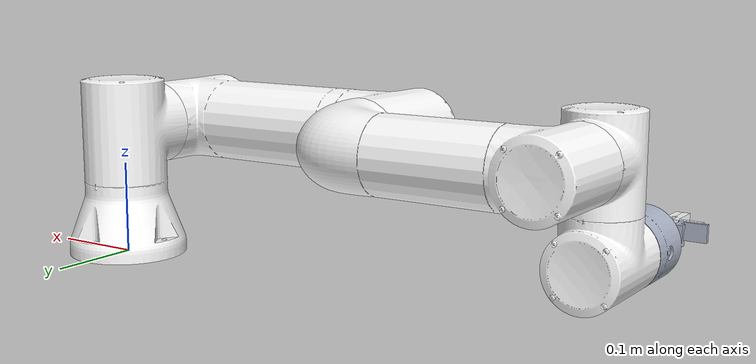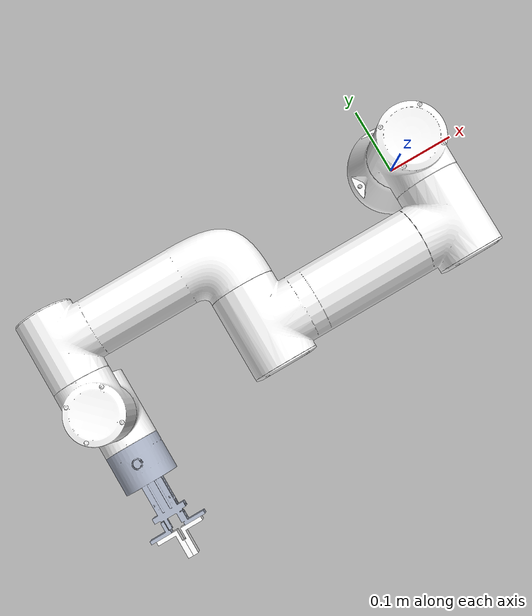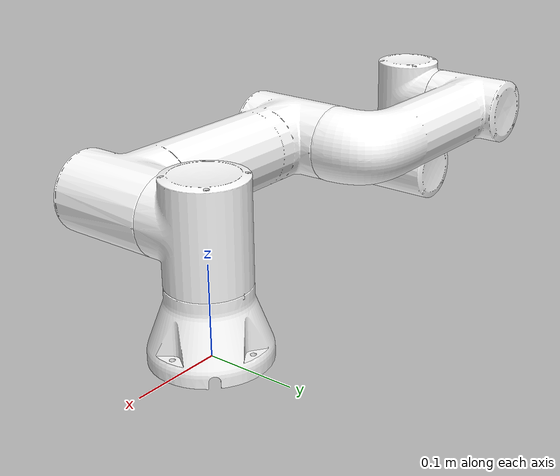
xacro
<?xml version="1.0"?>
<robot xmlns:xacro="http://www.ros.org/wiki/xacro" name="s622_moveit_descriptions">
    <xacro:arg name="initial_positions_file" default="$(find s622_moveit_config)/config/initial_positions.yaml" />

    <!-- Import dummy2-gripperv2 urdf file -->
    <xacro:include filename="$(find s622_moveit_descriptions)/urdf/s622_moveit_descriptions.urdf" />

    <gazebo>
        <plugin filename="gz_ros2_control-system" name="gz_ros2_control::GazeboSimROS2ControlPlugin">
            <parameters>$(find s622_moveit_config)/config/ros2_controllers.yaml</parameters>
        </plugin>
    </gazebo>

    <gazebo reference="finger1_joint">
        <mu1>30.0</mu1>
        <mu2>30.0</mu2>
        <kp>30000</kp>
        <kd>15</kd>
    </gazebo>
    <gazebo reference="finger2_joint">
        <mu1>30.0</mu1>
        <mu2>30.0</mu2>
        <kp>30000</kp>
        <kd>15</kd>
    </gazebo>
    <!-- Import control_xacro -->
    <xacro:include filename="yolov8_grasping_gazebo.friction.xacro" />
    <xacro:s622_moveit_descriptions_ros2_control name="GazeboSystem" initial_positions_file="$(arg initial_positions_file)"/>

</robot>

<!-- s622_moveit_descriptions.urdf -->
<robot
  name="s622_moveit_descriptions">

  <link name="world" />
  <joint name="world_joint" type="fixed">
    <parent link="world" />
    <child link = "base_link" />
    <origin xyz="0.0 0.0 0.0" rpy="0.0 0.0 0" />
  </joint>

  <link
    name="base_link">
    <inertial>
      <origin
        xyz="-0.00049027 -0.00045095 0.032527"
        rpy="0 0 0" />
      <mass
        value="0.29035" />
      <inertia
        ixx="0.00051309"
        ixy="4.2426E-06"
        ixz="-3.9414E-06"
        iyy="0.00051293"
        iyz="-3.6087E-06"
        izz="0.00073224" />
    </inertial>
    <visual>
      <origin
        xyz="0 0 0"
        rpy="0 0 0" />
      <geometry>
        <mesh
          filename="package://s622_moveit_descriptions/meshes/base_link.STL" />
      </geometry>
      <material
        name="">
        <color
          rgba="1 1 1 1" />
      </material>
    </visual>
    <collision>
      <origin
        xyz="0 0 0"
        rpy="0 0 0" />
      <geometry>
        <mesh
          filename="package://s622_moveit_descriptions/meshes/base_link.STL" />
      </geometry>
    </collision>
  </link>
  <link
    name="shoulder_link">
    <inertial>
      <origin
        xyz="-2.8223E-07 -0.0024164 0.13521"
        rpy="0 0 0" />
      <mass
        value="0.78648" />
      <inertia
        ixx="0.0012306"
        ixy="-1.8019E-08"
        ixz="-4.8572E-09"
        iyy="0.0012007"
        iyz="1.621E-05"
        izz="0.00085665" />
    </inertial>
    <visual>
      <origin
        xyz="0 0 0"
        rpy="0 0 0" />
      <geometry>
        <mesh
          filename="package://s622_moveit_descriptions/meshes/shoulder_link.STL" />
      </geometry>
      <material
        name="">
        <color
          rgba="1 1 1 1" />
      </material>
    </visual>
    <collision>
      <origin
        xyz="0 0 0"
        rpy="0 0 0" />
      <geometry>
        <mesh
          filename="package://s622_moveit_descriptions/meshes/shoulder_link.STL" />
      </geometry>
    </collision>
  </link>
  <joint
    name="j1"
    type="revolute">
    <origin
      xyz="0 0 0"
      rpy="0 0 0" />
    <parent
      link="base_link" />
    <child
      link="shoulder_link" />
    <axis
      xyz="0 0 1" />
    <limit
      lower="-3.0543"
      upper="3.0543"
      effort="150"
      velocity="3.15" />
    <calibration
      rising="0"
      falling="0" />
    <dynamics
      damping="0"
      friction="0" />
    <safety_controller
      soft_upper_limit="3.0543"
      soft_lower_limit="-3.0543"
      k_position="15"
      k_velocity="10" />
  </joint>
  <link
    name="upperarm_link">
    <inertial>
      <origin
        xyz="-0.14 -3.2998E-09 0.1117"
        rpy="0 0 0" />
      <mass
        value="2.774" />
      <inertia
        ixx="0.0038584"
        ixy="5.6311E-09"
        ixz="7.0604E-09"
        iyy="0.037026"
        iyz="3.4667E-10"
        izz="0.036047" />
    </inertial>
    <visual>
      <origin
        xyz="0 0 0"
        rpy="0 0 0" />
      <geometry>
        <mesh
          filename="package://s622_moveit_descriptions/meshes/upperarm_link.STL" />
      </geometry>
      <material
        name="">
        <color
          rgba="1 1 1 1" />
      </material>
    </visual>
    <collision>
      <origin
        xyz="0 0 0"
        rpy="0 0 0" />
      <geometry>
        <mesh
          filename="package://s622_moveit_descriptions/meshes/upperarm_link.STL" />
      </geometry>
    </collision>
  </link>
  <joint
    name="j2"
    type="revolute">
    <origin
      xyz="0 0 0.14"
      rpy="1.5708 0 0" />
    <parent
      link="shoulder_link" />
    <child
      link="upperarm_link" />
    <axis
      xyz="0 0 1" />
    <limit
      lower="-4.6251"
      upper="1.4835"
      effort="150"
      velocity="3.15" />
    <calibration
      rising="0"
      falling="0" />
    <dynamics
      damping="0"
      friction="0" />
    <safety_controller
      soft_upper_limit="1.4835"
      soft_lower_limit="-4.6251"
      k_position="15"
      k_velocity="10" />
  </joint>
  <link
    name="forearm_link">
    <inertial>
      <origin
        xyz="-0.12829 3.461E-07 0.004504"
        rpy="0 0 0" />
      <mass
        value="1.8066" />
      <inertia
        ixx="0.0018648"
        ixy="-8.4793E-08"
        ixz="-0.00054453"
        iyy="0.016897"
        iyz="5.6265E-09"
        izz="0.01656" />
    </inertial>
    <visual>
      <origin
        xyz="0 0 0"
        rpy="0 0 0" />
      <geometry>
        <mesh
          filename="package://s622_moveit_descriptions/meshes/forearm_link.STL" />
      </geometry>
      <material
        name="">
        <color
          rgba="1 1 1 1" />
      </material>
    </visual>
    <collision>
      <origin
        xyz="0 0 0"
        rpy="0 0 0" />
      <geometry>
        <mesh
          filename="package://s622_moveit_descriptions/meshes/forearm_link.STL" />
      </geometry>
    </collision>
  </link>
  <joint
    name="j3"
    type="revolute">
    <origin
      xyz="-0.28 0 0"
      rpy="0 0 0" />
    <parent
      link="upperarm_link" />
    <child
      link="forearm_link" />
    <axis
      xyz="0 0 1" />
    <limit
      lower="-2.8274"
      upper="2.8274"
      effort="150"
      velocity="3.15" />
    <calibration
      rising="0"
      falling="0" />
    <dynamics
      damping="0"
      friction="0" />
    <safety_controller
      soft_upper_limit="2.8274"
      soft_lower_limit="-2.8274"
      k_position="15"
      k_velocity="10" />
  </joint>
  <link
    name="wrist1_link">
    <inertial>
      <origin
        xyz="2.7977E-07 -0.00344 0.098294"
        rpy="0 0 0" />
      <mass
        value="0.59151" />
      <inertia
        ixx="0.0007449"
        ixy="3.5335E-10"
        ixz="1.3551E-08"
        iyy="0.00053793"
        iyz="1.2039E-05"
        izz="0.00070651" />
    </inertial>
    <visual>
      <origin
        xyz="0 0 0"
        rpy="0 0 0" />
      <geometry>
        <mesh
          filename="package://s622_moveit_descriptions/meshes/wrist1_link.STL" />
      </geometry>
      <material
        name="">
        <color
          rgba="1 1 1 1" />
      </material>
    </visual>
    <collision>
      <origin
        xyz="0 0 0"
        rpy="0 0 0" />
      <geometry>
        <mesh
          filename="package://s622_moveit_descriptions/meshes/wrist1_link.STL" />
      </geometry>
    </collision>
  </link>
  <joint
    name="j4"
    type="revolute">
    <origin
      xyz="-0.24001 0 0"
      rpy="0 0 0" />
    <parent
      link="forearm_link" />
    <child
      link="wrist1_link" />
    <axis
      xyz="0 0 1" />
    <limit
      lower="-4.6251"
      upper="1.4835"
      effort="28"
      velocity="3.2" />
    <calibration
      rising="0"
      falling="0" />
    <dynamics
      damping="0"
      friction="0" />
    <safety_controller
      soft_upper_limit="1.4835"
      soft_lower_limit="-4.6251"
      k_position="15"
      k_velocity="10" />
  </joint>
  <link
    name="wrist2_link">
    <inertial>
      <origin
        xyz="-2.7639E-07 0.00344 0.098294"
        rpy="0 0 0" />
      <mass
        value="0.59151" />
      <inertia
        ixx="0.0007449"
        ixy="3.5282E-10"
        ixz="-1.3542E-08"
        iyy="0.00053793"
        iyz="-1.2039E-05"
        izz="0.00070651" />
    </inertial>
    <visual>
      <origin
        xyz="0 0 0"
        rpy="0 0 0" />
      <geometry>
        <mesh
          filename="package://s622_moveit_descriptions/meshes/wrist2_link.STL" />
      </geometry>
      <material
        name="">
        <color
          rgba="1 1 1 1" />
      </material>
    </visual>
    <collision>
      <origin
        xyz="0 0 0"
        rpy="0 0 0" />
      <geometry>
        <mesh
          filename="package://s622_moveit_descriptions/meshes/wrist2_link.STL" />
      </geometry>
    </collision>
  </link>
  <joint
    name="j5"
    type="revolute">
    <origin
      xyz="0 0 0.102"
      rpy="1.5708 0 0" />
    <parent
      link="wrist1_link" />
    <child
      link="wrist2_link" />
    <axis
      xyz="0 0 1" />
    <limit
      lower="-3.0543"
      upper="3.0543"
      effort="28"
      velocity="3.2" />
    <calibration
      rising="0"
      falling="0" />
    <dynamics
      damping="0"
      friction="0" />
    <safety_controller
      soft_upper_limit="3.0543"
      soft_lower_limit="-3.0543"
      k_position="15"
      k_velocity="10" />
  </joint>
  <link
    name="wrist3_link">
    <inertial>
      <origin
        xyz="3.6559E-05 6.6964E-06 0.095419"
        rpy="0 0 0" />
      <mass
        value="0.42796" />
      <inertia
        ixx="0.00020402"
        ixy="-4.68E-09"
        ixz="-2.1889E-08"
        iyy="0.00020635"
        iyz="5.9176E-08"
        izz="0.00033039" />
    </inertial>
    <visual>
      <origin
        xyz="0 0 0"
        rpy="0 0 0" />
      <geometry>
        <mesh
          filename="package://s622_moveit_descriptions/meshes/wrist3_link.STL" />
      </geometry>
      <material
        name="">
        <color
          rgba="0.66667 0.69804 0.76863 1" />
      </material>
    </visual>
    <collision>
      <origin
        xyz="0 0 0"
        rpy="0 0 0" />
      <geometry>
        <mesh
          filename="package://s622_moveit_descriptions/meshes/wrist3_link.STL" />
      </geometry>
    </collision>
  </link>
  <joint
    name="j6"
    type="revolute">
    <origin
      xyz="0 0 0.102"
      rpy="-1.5708 0 0" />
    <parent
      link="wrist2_link" />
    <child
      link="wrist3_link" />
    <axis
      xyz="0 0 1" />
    <limit
      lower="-3.0543"
      upper="3.0543"
      effort="28"
      velocity="3.2" />
    <calibration
      rising="0"
      falling="0" />
    <dynamics
      damping="0"
      friction="0" />
    <safety_controller
      soft_upper_limit="3.0543"
      soft_lower_limit="-3.0543"
      k_position="15"
      k_velocity="10" />
  </joint>
  <link
    name="finger1">
    <inertial>
      <origin
        xyz="0.00067584 0.03547 -5.8981E-06"
        rpy="0 0 0" />
      <mass
        value="0.008826" />
      <inertia
        ixx="1.5494E-06"
        ixy="5.248E-07"
        ixz="3.4585E-09"
        iyy="9.8473E-07"
        iyz="-4.5799E-09"
        izz="1.9457E-06" />
    </inertial>
    <visual>
      <origin
        xyz="0 0 0"
        rpy="0 0 0" />
      <geometry>
        <mesh
          filename="package://s622_moveit_descriptions/meshes/finger1.STL" />
      </geometry>
      <material
        name="">
        <color
          rgba="1 1 1 1" />
      </material>
    </visual>
    <collision>
      <origin
        xyz="0 0 0"
        rpy="0 0 0" />
      <geometry>
        <mesh
          filename="package://s622_moveit_descriptions/meshes/finger1.STL" />
      </geometry>
    </collision>
  </link>
  <joint
    name="finger1_joint"
    type="prismatic">
    <origin
      xyz="-0.0099996 -8.7262E-05 0.1658"
      rpy="1.5708 0 3.1416" />
    <parent
      link="wrist3_link" />
    <child
      link="finger1" />
    <axis
      xyz="0.99996 0 -0.0087267" />
    <limit
      lower="0.0"
      upper="0.0305"
      effort="150"
      velocity="3.2" />
  </joint>
  <link
    name="finger2">
    <inertial>
      <origin
        xyz="-0.00067584 0.03547 5.8981E-06"
        rpy="0 0 0" />
      <mass
        value="0.008826" />
      <inertia
        ixx="1.5494E-06"
        ixy="-5.248E-07"
        ixz="3.4585E-09"
        iyy="9.8473E-07"
        iyz="4.5799E-09"
        izz="1.9457E-06" />
    </inertial>
    <visual>
      <origin
        xyz="0 0 0"
        rpy="0 0 0" />
      <geometry>
        <mesh
          filename="package://s622_moveit_descriptions/meshes/finger2.STL" />
      </geometry>
      <material
        name="">
        <color
          rgba="1 1 1 1" />
      </material>
    </visual>
    <collision>
      <origin
        xyz="0 0 0"
        rpy="0 0 0" />
      <geometry>
        <mesh
          filename="package://s622_moveit_descriptions/meshes/finger2.STL" />
      </geometry>
    </collision>
  </link>
  <joint
    name="finger2_joint"
    type="prismatic">
    <origin
      xyz="0.0099996 8.7271E-05 0.1658"
      rpy="1.5708 0 3.1416" />
    <parent
      link="wrist3_link" />
    <child
      link="finger2" />
    <axis
      xyz="0.99996 0 -0.0087267" />
    <limit
      lower="-0.0305"
      upper="0"
      effort="150"
      velocity="3.2" />
  </joint>

  <!-- Grasp frame at the center of the gripper -->
  <link name="grasp_frame"/>

  <joint name="wrist3_to_grasp_frame" type="fixed">
    <parent link="wrist3_link"/>
    <child link="grasp_frame"/>
    <!-- midpoint between finger1_joint and finger2_joint origins -->
    <origin xyz="0 0 0.2168" rpy="0 0 0"/>
  </joint>

</robot>
